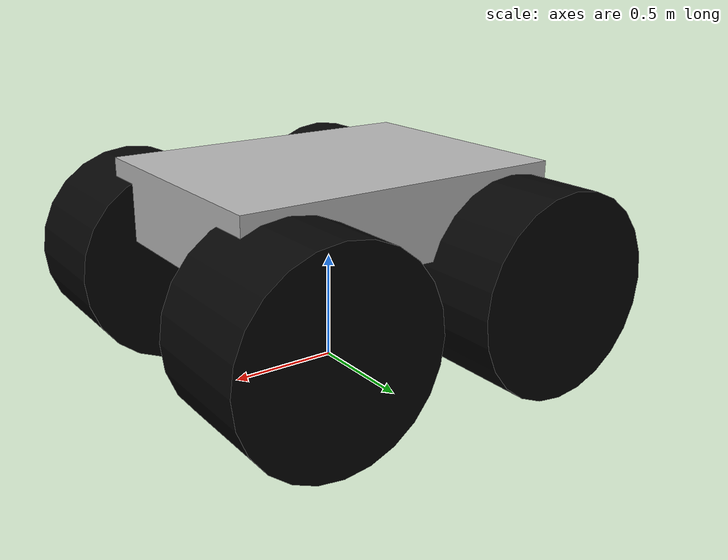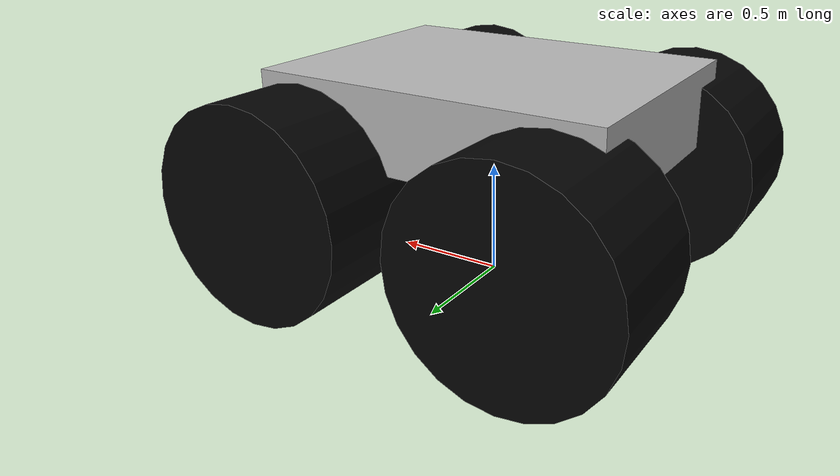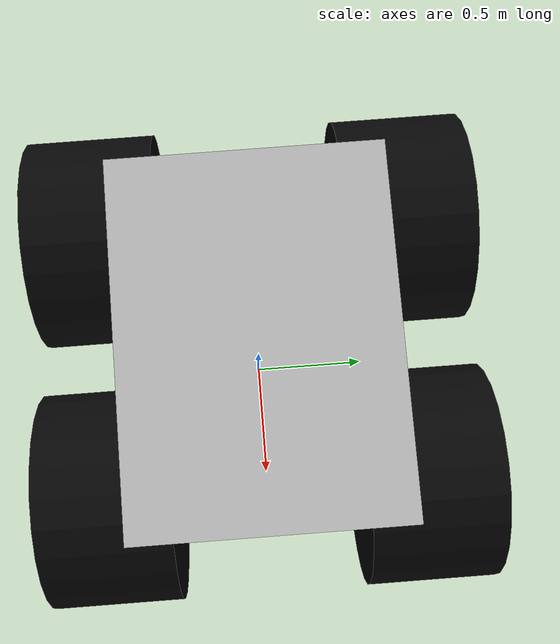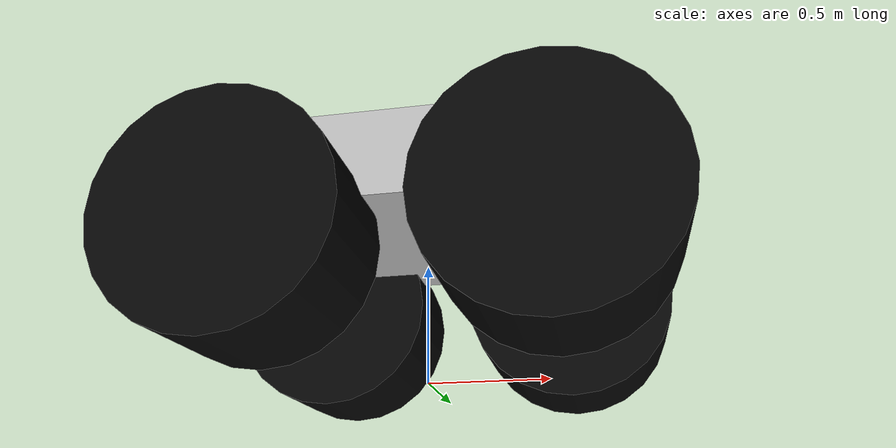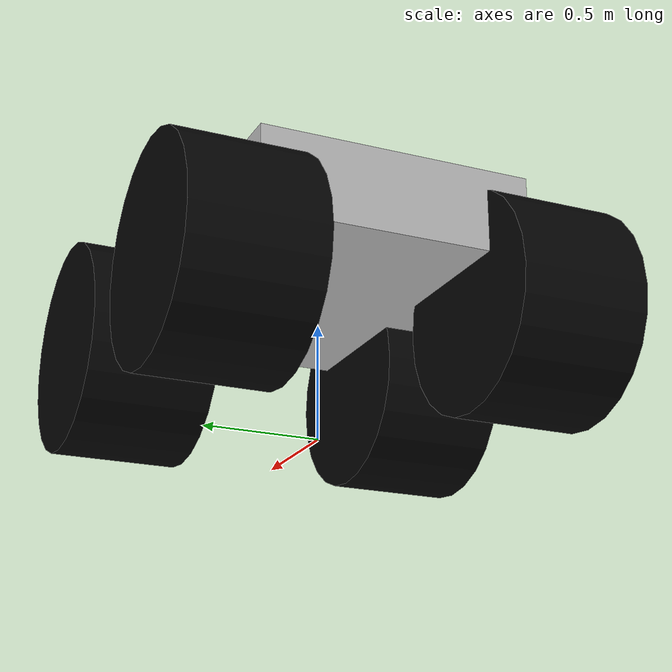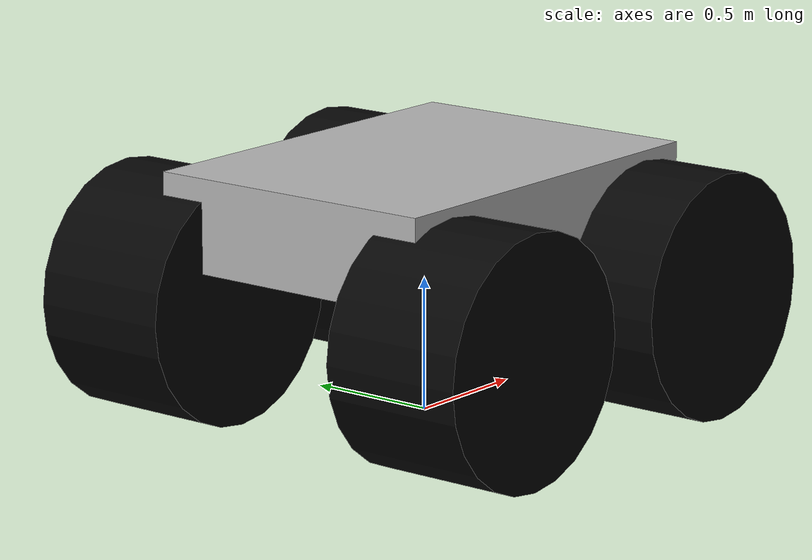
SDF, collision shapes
<?xml version="1.0" ?>
<sdf version="1.9">

  <model name="wave_rover">

    <pose>0 0 0 0 0 0</pose>
    <static>false</static>

    <!-- BASE / CHASSIS                                         -->

    <link name="base_link">

      <pose>0 0 0 0 0 0</pose>

      <inertial>
        <pose>0 0 0.65 0 0 0</pose>
        <mass>25.0</mass>

        <inertia>
          <ixx>4.0</ixx>
          <iyy>4.0</iyy>
          <izz>4.0</izz>

          <ixy>0</ixy>
          <ixz>0</ixz>
          <iyz>0</iyz>
        </inertia>
      </inertial>

      <!-- BASE COLLISION -->

      <collision name="base_collision">

        <pose>0 0 0.78 0 0 0</pose>

        <geometry>
          <box>
            <size>1.55 1.15 0.35</size>
          </box>
        </geometry>

        <surface>
          <friction>
            <ode>
              <mu>1.0</mu>
              <mu2>1.0</mu2>
            </ode>
          </friction>
        </surface>

      </collision>

      <!-- CHASSIS STL -->

      <visual name="chassis_visual">

        <pose>0 0 0 1.5708 0 1.5708</pose>

        <geometry>
          <mesh>

            <uri>
              file:///home/rasoolbuksh/rover_ws/src/rover_description/meshes/chassis.stl
            </uri>

            <scale>0.001 0.001 0.001</scale>

          </mesh>
        </geometry>

      </visual>

      <!-- LIDAR STL VISUAL                                       -->

      <visual name="lidar_visual">

        <pose>0 0 0 1.5708 0 1.5708</pose>

        <geometry>
          <mesh>

            <uri>
              file:///home/rasoolbuksh/rover_ws/src/rover_description/meshes/lidar_sensor.stl
            </uri>

            <scale>0.001 0.001 0.001</scale>

          </mesh>
        </geometry>

      </visual>

      <!-- ACTUAL GAZEBO 2D LIDAR SENSOR                          -->

      <sensor name="front_lidar" type="gpu_lidar">

        <!-- Position of laser scanner relative to base_link -->
        <pose>0 0 1.20 0 0 0</pose>

        <!-- Gazebo LiDAR topic -->
        <topic>/scan</topic>

        <!-- 10 scans per second -->
        <update_rate>10</update_rate>

        <ray>

          <!-- 360 degree horizontal scan -->

          <scan>

            <horizontal>

              <samples>720</samples>

              <resolution>1</resolution>

              <min_angle>-3.14159</min_angle>

              <max_angle>3.14159</max_angle>

            </horizontal>

          </scan>

          <!-- Detection distance -->

          <range>

            <min>0.15</min>

            <max>12.0</max>

            <resolution>0.01</resolution>

          </range>

          <!-- Small realistic measurement noise -->

          <noise>

            <type>gaussian</type>

            <mean>0.0</mean>

            <stddev>0.01</stddev>

          </noise>

        </ray>

        <always_on>true</always_on>

        <!-- Show laser rays in Gazebo -->
        <visualize>true</visualize>

      </sensor>

    </link>

    <!-- FRONT LEFT WHEEL                                       -->

    <link name="front_left_wheel">

      <pose>0.57 0.665 0.46 1.5708 0 0</pose>

      <inertial>

        <mass>2.5</mass>

        <inertia>

          <ixx>0.25</ixx>
          <iyy>0.25</iyy>
          <izz>0.25</izz>

          <ixy>0</ixy>
          <ixz>0</ixz>
          <iyz>0</iyz>

        </inertia>

      </inertial>

      <collision name="collision">

        <geometry>

          <cylinder>

            <radius>0.46</radius>

            <length>0.545</length>

          </cylinder>

        </geometry>

        <surface>

          <friction>

            <ode>

              <mu>6.0</mu>
              <mu2>5.0</mu2>

              <slip1>0.0</slip1>
              <slip2>0.0</slip2>

            </ode>

          </friction>

          <contact>

            <ode>

              <kp>1000000</kp>

              <kd>100</kd>

              <max_vel>0.05</max_vel>

              <min_depth>0.001</min_depth>

            </ode>

          </contact>

        </surface>

      </collision>

      <visual name="visual">

        <geometry>

          <cylinder>

            <radius>0.46</radius>

            <length>0.545</length>

          </cylinder>

        </geometry>

        <material>

          <ambient>0.02 0.02 0.02 1</ambient>

          <diffuse>0.02 0.02 0.02 1</diffuse>

        </material>

      </visual>

    </link>

    <!-- FRONT RIGHT WHEEL                                      -->

    <link name="front_right_wheel">

      <pose>0.57 -0.665 0.46 1.5708 0 0</pose>

      <inertial>

        <mass>2.5</mass>

        <inertia>

          <ixx>0.25</ixx>
          <iyy>0.25</iyy>
          <izz>0.25</izz>

          <ixy>0</ixy>
          <ixz>0</ixz>
          <iyz>0</iyz>

        </inertia>

      </inertial>

      <collision name="collision">

        <geometry>

          <cylinder>

            <radius>0.46</radius>

            <length>0.545</length>

          </cylinder>

        </geometry>

        <surface>

          <friction>

            <ode>

              <mu>6.0</mu>
              <mu2>5.0</mu2>

              <slip1>0.0</slip1>
              <slip2>0.0</slip2>

            </ode>

          </friction>

          <contact>

            <ode>

              <kp>1000000</kp>

              <kd>100</kd>

              <max_vel>0.05</max_vel>

              <min_depth>0.001</min_depth>

            </ode>

          </contact>

        </surface>

      </collision>

      <visual name="visual">

        <geometry>

          <cylinder>

            <radius>0.46</radius>

            <length>0.545</length>

          </cylinder>

        </geometry>

        <material>

          <ambient>0.02 0.02 0.02 1</ambient>

          <diffuse>0.02 0.02 0.02 1</diffuse>

        </material>

      </visual>

    </link>

    <!-- REAR LEFT WHEEL                                        -->

    <link name="rear_left_wheel">

      <pose>-0.57 0.665 0.46 1.5708 0 0</pose>

      <inertial>

        <mass>2.5</mass>

        <inertia>

          <ixx>0.25</ixx>
          <iyy>0.25</iyy>
          <izz>0.25</izz>

          <ixy>0</ixy>
          <ixz>0</ixz>
          <iyz>0</iyz>

        </inertia>

      </inertial>

      <collision name="collision">

        <geometry>

          <cylinder>

            <radius>0.46</radius>

            <length>0.545</length>

          </cylinder>

        </geometry>

        <surface>

          <friction>

            <ode>

              <mu>6.0</mu>
              <mu2>5.0</mu2>

              <slip1>0.0</slip1>
              <slip2>0.0</slip2>

            </ode>

          </friction>

          <contact>

            <ode>

              <kp>1000000</kp>

              <kd>100</kd>

              <max_vel>0.05</max_vel>

              <min_depth>0.001</min_depth>

            </ode>

          </contact>

        </surface>

      </collision>

      <visual name="visual">

        <geometry>

          <cylinder>

            <radius>0.46</radius>

            <length>0.545</length>

          </cylinder>

        </geometry>

        <material>

          <ambient>0.02 0.02 0.02 1</ambient>

          <diffuse>0.02 0.02 0.02 1</diffuse>

        </material>

      </visual>

    </link>

    <!-- REAR RIGHT WHEEL                                       -->

    <link name="rear_right_wheel">

      <pose>-0.57 -0.665 0.46 1.5708 0 0</pose>

      <inertial>

        <mass>2.5</mass>

        <inertia>

          <ixx>0.25</ixx>
          <iyy>0.25</iyy>
          <izz>0.25</izz>

          <ixy>0</ixy>
          <ixz>0</ixz>
          <iyz>0</iyz>

        </inertia>

      </inertial>

      <collision name="collision">

        <geometry>

          <cylinder>

            <radius>0.46</radius>

            <length>0.545</length>

          </cylinder>

        </geometry>

        <surface>

          <friction>

            <ode>

              <mu>6.0</mu>
              <mu2>5.0</mu2>

              <slip1>0.0</slip1>
              <slip2>0.0</slip2>

            </ode>

          </friction>

          <contact>

            <ode>

              <kp>1000000</kp>

              <kd>100</kd>

              <max_vel>0.05</max_vel>

              <min_depth>0.001</min_depth>

            </ode>

          </contact>

        </surface>

      </collision>

      <visual name="visual">

        <geometry>

          <cylinder>

            <radius>0.46</radius>

            <length>0.545</length>

          </cylinder>

        </geometry>

        <material>

          <ambient>0.02 0.02 0.02 1</ambient>

          <diffuse>0.02 0.02 0.02 1</diffuse>

        </material>

      </visual>

    </link>

    <!-- WHEEL JOINTS                                           -->

    <!-- FRONT LEFT -->

    <joint name="front_left_wheel_joint" type="revolute">

      <parent>base_link</parent>

      <child>front_left_wheel</child>

      <axis>

        <xyz>0 0 -1</xyz>

        <limit>

          <lower>-1e16</lower>

          <upper>1e16</upper>

        </limit>

        <dynamics>

          <damping>0.3</damping>

          <friction>0.15</friction>

        </dynamics>

      </axis>

    </joint>

    <!-- FRONT RIGHT -->

    <joint name="front_right_wheel_joint" type="revolute">

      <parent>base_link</parent>

      <child>front_right_wheel</child>

      <axis>

        <xyz>0 0 -1</xyz>

        <limit>

          <lower>-1e16</lower>

          <upper>1e16</upper>

        </limit>

        <dynamics>

          <damping>0.3</damping>

          <friction>0.15</friction>

        </dynamics>

      </axis>

    </joint>

    <!-- REAR LEFT -->

    <joint name="rear_left_wheel_joint" type="revolute">

      <parent>base_link</parent>

      <child>rear_left_wheel</child>

      <axis>

        <xyz>0 0 -1</xyz>

        <limit>

          <lower>-1e16</lower>

          <upper>1e16</upper>

        </limit>

        <dynamics>

          <damping>0.3</damping>

          <friction>0.15</friction>

        </dynamics>

      </axis>

    </joint>

    <!-- REAR RIGHT -->

    <joint name="rear_right_wheel_joint" type="revolute">

      <parent>base_link</parent>

      <child>rear_right_wheel</child>

      <axis>

        <xyz>0 0 -1</xyz>

        <limit>

          <lower>-1e16</lower>

          <upper>1e16</upper>

        </limit>

        <dynamics>

          <damping>0.3</damping>

          <friction>0.15</friction>

        </dynamics>

      </axis>

    </joint>

    <!-- JOINT STATE PUBLISHER                                  -->

    <plugin
      filename="gz-sim-joint-state-publisher-system"
      name="gz::sim::systems::JointStatePublisher"/>

    <!-- DIFFERENTIAL DRIVE CONTROLLER                          -->

    <plugin
      filename="gz-sim-diff-drive-system"
      name="gz::sim::systems::DiffDrive">

      <left_joint>front_left_wheel_joint</left_joint>
      <left_joint>rear_left_wheel_joint</left_joint>

      <right_joint>front_right_wheel_joint</right_joint>
      <right_joint>rear_right_wheel_joint</right_joint>

      <wheel_separation>1.33</wheel_separation>

      <wheel_radius>0.46</wheel_radius>

      <odom_publish_frequency>50</odom_publish_frequency>

      <topic>/cmd_vel</topic>

      <odom_topic>/odom</odom_topic>

      <frame_id>odom</frame_id>

      <child_frame_id>base_link</child_frame_id>

    </plugin>

  </model>

</sdf>
